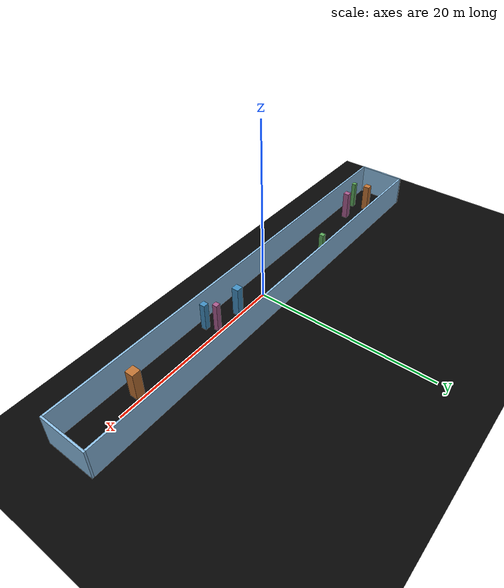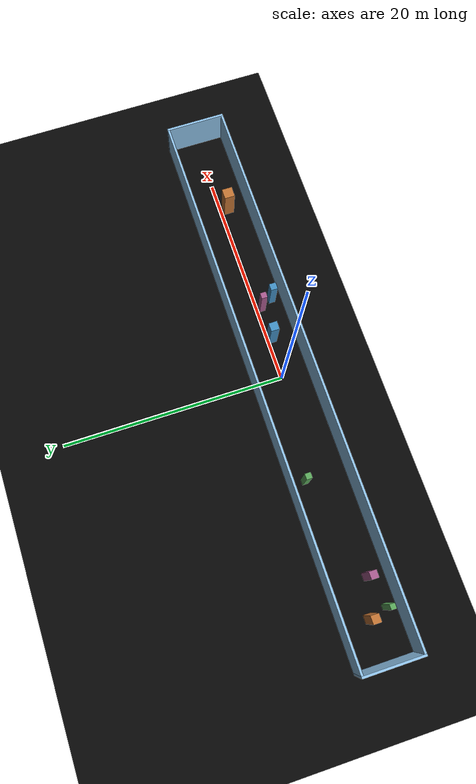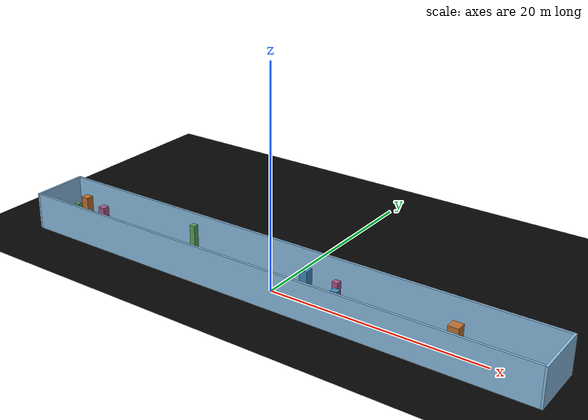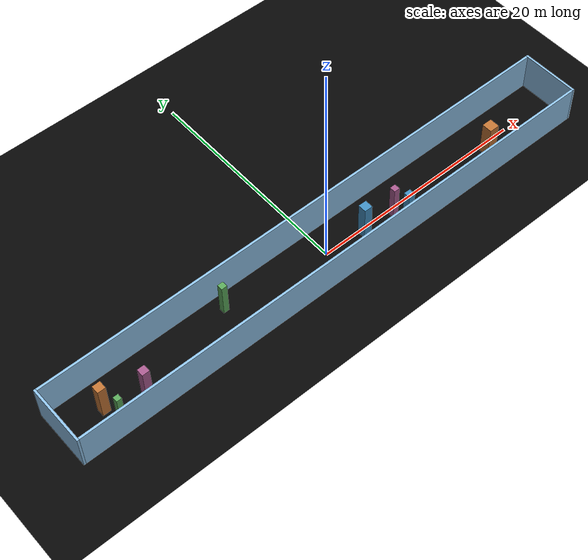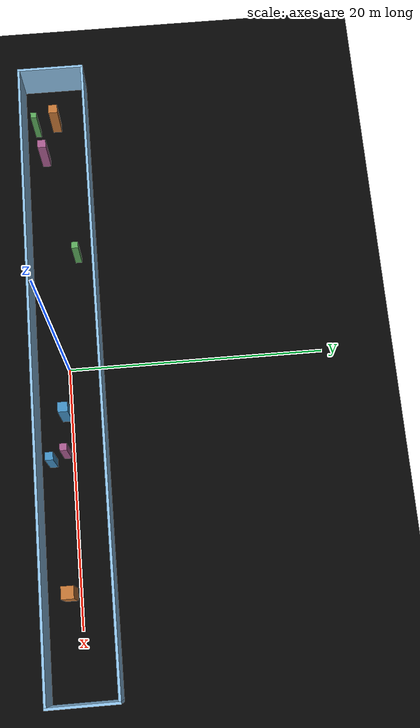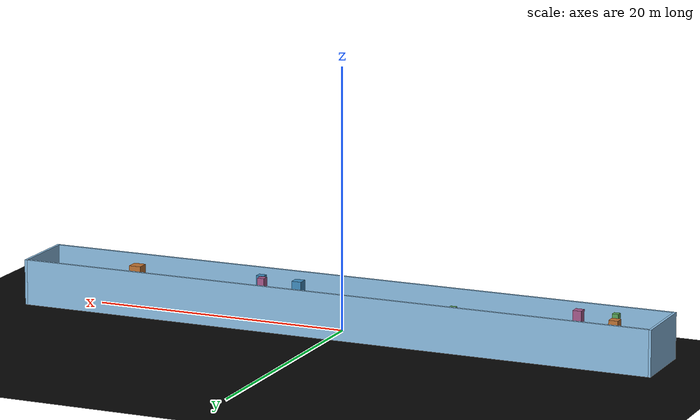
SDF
<sdf version="1.7">
 <world name="default">
  <physics name="default_physics" type="ode">
   <max_step_size>0.001</max_step_size>
   <real_time_factor>1</real_time_factor>
   <real_time_update_rate>1000</real_time_update_rate>
  </physics>
  <scene>
   <ambient>0.55 0.55 0.55 1</ambient>
   <background>0.80 0.86 0.92 1</background>
   <shadows>true</shadows>
   <grid>false</grid>
  </scene>
  <include><uri>model://sun</uri></include>
  <model name="ground_plane">
   <static>true</static>
   <link name="link">
    <collision name="collision">
     <geometry><plane><normal>0 0 1</normal><size>54.0 9.0</size></plane></geometry>
    </collision>
    <visual name="visual">
     <geometry><plane><normal>0 0 1</normal><size>54.0 9.0</size></plane></geometry>
     <material><ambient>0.02 0.02 0.02 1</ambient><diffuse>0.02 0.02 0.02 1</diffuse></material>
    </visual>
   </link>
  </model>
  <model name="wall_left">
   <static>true</static>
   <pose>-25.1 0.0 1.75 0 0 0</pose>
   <link name="link">
    <collision name="collision"><geometry><box><size>0.2 5.4 3.5</size></box></geometry></collision>
    <visual name="visual">
     <geometry><box><size>0.2 5.4 3.5</size></box></geometry>
     <material><ambient>0.55 0.75 0.90 1</ambient><diffuse>0.55 0.75 0.90 1</diffuse></material>
    </visual>
   </link>
  </model>
  <model name="wall_right">
   <static>true</static>
   <pose>25.1 0.0 1.75 0 0 0</pose>
   <link name="link">
    <collision name="collision"><geometry><box><size>0.2 5.4 3.5</size></box></geometry></collision>
    <visual name="visual">
     <geometry><box><size>0.2 5.4 3.5</size></box></geometry>
     <material><ambient>0.55 0.75 0.90 1</ambient><diffuse>0.55 0.75 0.90 1</diffuse></material>
    </visual>
   </link>
  </model>
  <model name="wall_bottom">
   <static>true</static>
   <pose>0.0 -2.6 1.75 0 0 0</pose>
   <link name="link">
    <collision name="collision"><geometry><box><size>50.0 0.2 3.5</size></box></geometry></collision>
    <visual name="visual">
     <geometry><box><size>50.0 0.2 3.5</size></box></geometry>
     <material><ambient>0.55 0.75 0.90 1</ambient><diffuse>0.55 0.75 0.90 1</diffuse></material>
    </visual>
   </link>
  </model>
  <model name="wall_top">
   <static>true</static>
   <pose>0.0 2.6 1.75 0 0 0</pose>
   <link name="link">
    <collision name="collision"><geometry><box><size>50.0 0.2 3.5</size></box></geometry></collision>
    <visual name="visual">
     <geometry><box><size>50.0 0.2 3.5</size></box></geometry>
     <material><ambient>0.55 0.75 0.90 1</ambient><diffuse>0.55 0.75 0.90 1</diffuse></material>
    </visual>
   </link>
  </model>
  <model name="static_prism_00">
   <static>true</static>
   <pose>7.3487 -1.5769 1.5726 0 0 0</pose>
   <link name="link">
    <collision name="collision"><geometry><box><size>0.6119 0.6119 3.1453</size></box></geometry></collision>
    <visual name="visual">
     <geometry><box><size>0.6119 0.6119 3.1453</size></box></geometry>
     <material><ambient>0.25 0.55 0.75 1</ambient><diffuse>0.25 0.55 0.75 1</diffuse></material>
    </visual>
   </link>
  </model>
  <model name="static_prism_01">
   <static>true</static>
   <pose>-21.4733 0.0266 1.6049 0 0 0</pose>
   <link name="link">
    <collision name="collision"><geometry><box><size>0.7179 0.7179 3.2097</size></box></geometry></collision>
    <visual name="visual">
     <geometry><box><size>0.7179 0.7179 3.2097</size></box></geometry>
     <material><ambient>0.75 0.45 0.20 1</ambient><diffuse>0.75 0.45 0.20 1</diffuse></material>
    </visual>
   </link>
  </model>
  <model name="static_prism_02">
   <static>true</static>
   <pose>-21.0045 -1.5681 1.615 0 0 0</pose>
   <link name="link">
    <collision name="collision"><geometry><box><size>0.4687 0.4687 3.2301</size></box></geometry></collision>
    <visual name="visual">
     <geometry><box><size>0.4687 0.4687 3.2301</size></box></geometry>
     <material><ambient>0.35 0.65 0.35 1</ambient><diffuse>0.35 0.65 0.35 1</diffuse></material>
    </visual>
   </link>
  </model>
  <model name="static_prism_03">
   <static>true</static>
   <pose>-18.2974 -1.0068 1.674 0 0 0</pose>
   <link name="link">
    <collision name="collision"><geometry><box><size>0.6623 0.6623 3.3481</size></box></geometry></collision>
    <visual name="visual">
     <geometry><box><size>0.6623 0.6623 3.3481</size></box></geometry>
     <material><ambient>0.65 0.35 0.55 1</ambient><diffuse>0.65 0.35 0.55 1</diffuse></material>
    </visual>
   </link>
  </model>
  <model name="static_prism_04">
   <static>true</static>
   <pose>3.7423 -0.3654 1.6922 0 0 0</pose>
   <link name="link">
    <collision name="collision"><geometry><box><size>0.7637 0.7637 3.3843</size></box></geometry></collision>
    <visual name="visual">
     <geometry><box><size>0.7637 0.7637 3.3843</size></box></geometry>
     <material><ambient>0.25 0.55 0.75 1</ambient><diffuse>0.25 0.55 0.75 1</diffuse></material>
    </visual>
   </link>
  </model>
  <model name="static_prism_05">
   <static>true</static>
   <pose>17.3362 -0.7073 1.557 0 0 0</pose>
   <link name="link">
    <collision name="collision"><geometry><box><size>0.9381 0.9381 3.114</size></box></geometry></collision>
    <visual name="visual">
     <geometry><box><size>0.9381 0.9381 3.114</size></box></geometry>
     <material><ambient>0.75 0.45 0.20 1</ambient><diffuse>0.75 0.45 0.20 1</diffuse></material>
    </visual>
   </link>
  </model>
  <model name="static_prism_06">
   <static>true</static>
   <pose>-9.3418 1.1943 1.5677 0 0 0</pose>
   <link name="link">
    <collision name="collision"><geometry><box><size>0.5221 0.5221 3.1353</size></box></geometry></collision>
    <visual name="visual">
     <geometry><box><size>0.5221 0.5221 3.1353</size></box></geometry>
     <material><ambient>0.35 0.65 0.35 1</ambient><diffuse>0.35 0.65 0.35 1</diffuse></material>
    </visual>
   </link>
  </model>
  <model name="static_prism_07">
   <static>true</static>
   <pose>6.7734 -0.4797 1.6372 0 0 0</pose>
   <link name="link">
    <collision name="collision"><geometry><box><size>0.5404 0.5404 3.2745</size></box></geometry></collision>
    <visual name="visual">
     <geometry><box><size>0.5404 0.5404 3.2745</size></box></geometry>
     <material><ambient>0.65 0.35 0.55 1</ambient><diffuse>0.65 0.35 0.55 1</diffuse></material>
    </visual>
   </link>
  </model>
 </world>
</sdf>
